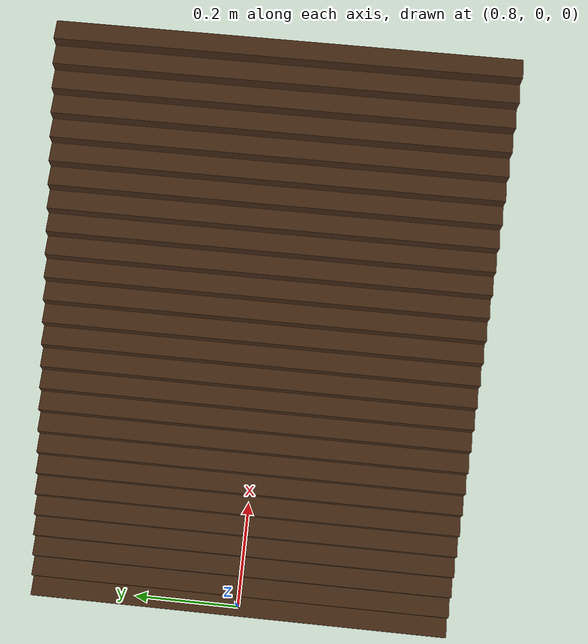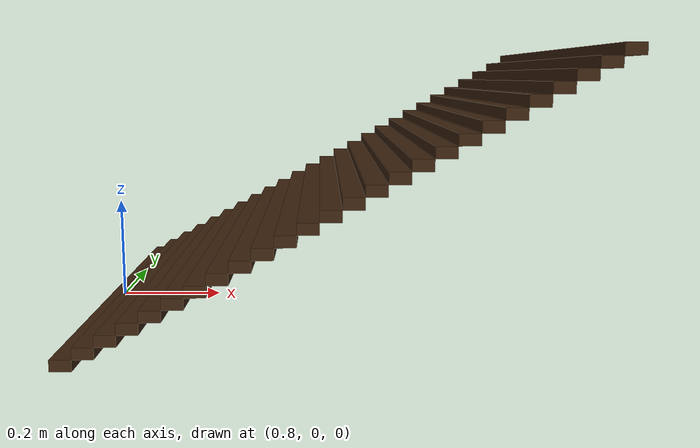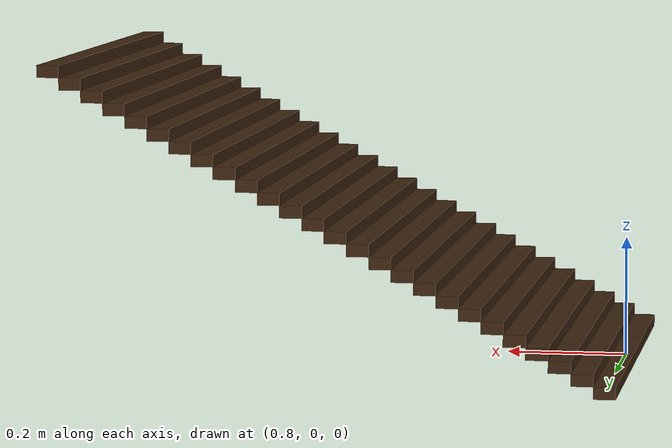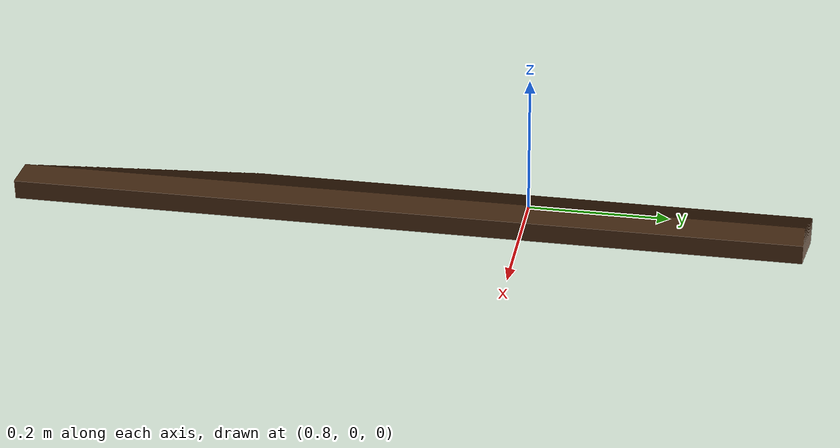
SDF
<?xml version="1.0" ?>
<sdf version="1.8">
    <model name="stairs">
        <static> true </static>
        <pose> 0.8 0 0 0 0 0</pose>
        <link name="block1">
            <pose>0 0 0 0 0 0 </pose>
            <collision name="collision">
                <geometry>
                    <box>
                        <size> 0.036 0.8 0.02 </size>
                    </box>
                </geometry>
            </collision>
            <visual name="visual">
                <geometry>
                    <box>
                        <size> 0.036 0.8 0.02 </size>
                    </box>
                </geometry>
                <material>
                    <ambient>0.4 0.2368 0.1036 1</ambient>
                    <diffuse>0.25 0.148 0.06475 1</diffuse>
                    <specular>1.0 1.0 1.0 1</specular>
                </material>
            </visual>
        </link>

        <link name="block2">
            <pose relative_to = "block1">0.036 0 0.02 0 0 0 </pose>
            <collision name="collision">
                <geometry>
                    <box>
                        <size> 0.036 0.8 0.02 </size>
                    </box>
                </geometry>
            </collision>
            <visual name="visual">
                <geometry>
                    <box>
                        <size> 0.036 0.8 0.02 </size>
                    </box>
                </geometry>
                <material>
                    <ambient>0.4 0.2368 0.1036 1</ambient>
                    <diffuse>0.25 0.148 0.06475 1</diffuse>
                    <specular>1.0 1.0 1.0 1</specular>
                </material>
            </visual>
        </link>

        <link name="block3">
            <pose relative_to = "block2">0.036 0 0.02 0 0 0 </pose>
            <collision name="collision">
                <geometry>
                    <box>
                        <size> 0.036 0.8 0.02 </size>
                    </box>
                </geometry>
            </collision>
            <visual name="visual">
                <geometry>
                    <box>
                        <size> 0.036 0.8 0.02 </size>
                    </box>
                </geometry>
                <material>
                    <ambient>0.4 0.2368 0.1036 1</ambient>
                    <diffuse>0.25 0.148 0.06475 1</diffuse>
                    <specular>1.0 1.0 1.0 1</specular>
                </material>
            </visual>
        </link>

        <link name="block4">
            <pose relative_to = "block3">0.036 0 0.02 0 0 0 </pose>
            <collision name="collision">
                <geometry>
                    <box>
                        <size> 0.036 0.8 0.02 </size>
                    </box>
                </geometry>
            </collision>
            <visual name="visual">
                <geometry>
                    <box>
                        <size> 0.036 0.8 0.02 </size>
                    </box>
                </geometry>
                <material>
                    <ambient>0.4 0.2368 0.1036 1</ambient>
                    <diffuse>0.25 0.148 0.06475 1</diffuse>
                    <specular>1.0 1.0 1.0 1</specular>
                </material>
            </visual>
        </link>

        <link name="block5">
            <pose relative_to = "block4">0.036 0 0.02 0 0 0 </pose>
            <collision name="collision">
                <geometry>
                    <box>
                        <size> 0.036 0.8 0.02 </size>
                    </box>
                </geometry>
            </collision>
            <visual name="visual">
                <geometry>
                    <box>
                        <size> 0.036 0.8 0.02 </size>
                    </box>
                </geometry>
                <material>
                    <ambient>0.4 0.2368 0.1036 1</ambient>
                    <diffuse>0.25 0.148 0.06475 1</diffuse>
                    <specular>1.0 1.0 1.0 1</specular>
                </material>
            </visual>
        </link>

        <link name="block6">
            <pose relative_to = "block5">0.036 0 0.02 0 0 0 </pose>
            <collision name="collision">
                <geometry>
                    <box>
                        <size> 0.036 0.8 0.02 </size>
                    </box>
                </geometry>
            </collision>
            <visual name="visual">
                <geometry>
                    <box>
                        <size> 0.036 0.8 0.02 </size>
                    </box>
                </geometry>
                <material>
                    <ambient>0.4 0.2368 0.1036 1</ambient>
                    <diffuse>0.25 0.148 0.06475 1</diffuse>
                    <specular>1.0 1.0 1.0 1</specular>
                </material>
            </visual>
        </link>

        <link name="block7">
            <pose relative_to = "block6">0.036 0 0.02 0 0 0 </pose>
            <collision name="collision">
                <geometry>
                    <box>
                        <size> 0.036 0.8 0.02 </size>
                    </box>
                </geometry>
            </collision>
            <visual name="visual">
                <geometry>
                    <box>
                        <size> 0.036 0.8 0.02 </size>
                    </box>
                </geometry>
                <material>
                    <ambient>0.4 0.2368 0.1036 1</ambient>
                    <diffuse>0.25 0.148 0.06475 1</diffuse>
                    <specular>1.0 1.0 1.0 1</specular>
                </material>
            </visual>
        </link>

        <link name="block8">
            <pose relative_to = "block7">0.036 0 0.02 0 0 0 </pose>
            <collision name="collision">
                <geometry>
                    <box>
                        <size> 0.036 0.8 0.02 </size>
                    </box>
                </geometry>
            </collision>
            <visual name="visual">
                <geometry>
                    <box>
                        <size> 0.036 0.8 0.02 </size>
                    </box>
                </geometry>
                <material>
                    <ambient>0.4 0.2368 0.1036 1</ambient>
                    <diffuse>0.25 0.148 0.06475 1</diffuse>
                    <specular>1.0 1.0 1.0 1</specular>
                </material>
            </visual>
        </link>

        <link name="block9">
            <pose relative_to = "block8">0.036 0 0.02 0 0 0 </pose>
            <collision name="collision">
                <geometry>
                    <box>
                        <size> 0.036 0.8 0.02 </size>
                    </box>
                </geometry>
            </collision>
            <visual name="visual">
                <geometry>
                    <box>
                        <size> 0.036 0.8 0.02 </size>
                    </box>
                </geometry>
                <material>
                    <ambient>0.4 0.2368 0.1036 1</ambient>
                    <diffuse>0.25 0.148 0.06475 1</diffuse>
                    <specular>1.0 1.0 1.0 1</specular>
                </material>
            </visual>
        </link>

        <link name="block10">
            <pose relative_to = "block9">0.036 0 0.02 0 0 0 </pose>
            <collision name="collision">
                <geometry>
                    <box>
                        <size> 0.036 0.8 0.02 </size>
                    </box>
                </geometry>
            </collision>
            <visual name="visual">
                <geometry>
                    <box>
                        <size> 0.036 0.8 0.02 </size>
                    </box>
                </geometry>
                <material>
                    <ambient>0.4 0.2368 0.1036 1</ambient>
                    <diffuse>0.25 0.148 0.06475 1</diffuse>
                    <specular>1.0 1.0 1.0 1</specular>
                </material>
            </visual>
        </link>

        <link name="block11">
            <pose relative_to = "block10">0.036 0 0.02 0 0 0 </pose>
            <collision name="collision">
                <geometry>
                    <box>
                        <size> 0.036 0.8 0.02 </size>
                    </box>
                </geometry>
            </collision>
            <visual name="visual">
                <geometry>
                    <box>
                        <size> 0.036 0.8 0.02 </size>
                    </box>
                </geometry>
                <material>
                    <ambient>0.4 0.2368 0.1036 1</ambient>
                    <diffuse>0.25 0.148 0.06475 1</diffuse>
                    <specular>1.0 1.0 1.0 1</specular>
                </material>
            </visual>
        </link>

        <link name="block12">
            <pose relative_to = "block11">0.036 0 0.02 0 0 0 </pose>
            <collision name="collision">
                <geometry>
                    <box>
                        <size> 0.036 0.8 0.02 </size>
                    </box>
                </geometry>
            </collision>
            <visual name="visual">
                <geometry>
                    <box>
                        <size> 0.036 0.8 0.02 </size>
                    </box>
                </geometry>
                <material>
                    <ambient>0.4 0.2368 0.1036 1</ambient>
                    <diffuse>0.25 0.148 0.06475 1</diffuse>
                    <specular>1.0 1.0 1.0 1</specular>
                </material>
            </visual>
        </link>

        <link name="block13">
            <pose relative_to = "block12">0.036 0 0.02 0 0 0 </pose>
            <collision name="collision">
                <geometry>
                    <box>
                        <size> 0.036 0.8 0.02 </size>
                    </box>
                </geometry>
            </collision>
            <visual name="visual">
                <geometry>
                    <box>
                        <size> 0.036 0.8 0.02 </size>
                    </box>
                </geometry>
                <material>
                    <ambient>0.4 0.2368 0.1036 1</ambient>
                    <diffuse>0.25 0.148 0.06475 1</diffuse>
                    <specular>1.0 1.0 1.0 1</specular>
                </material>
            </visual>
        </link>

        <link name="block14">
            <pose relative_to = "block13">0.036 0 0.02 0 0 0 </pose>
            <collision name="collision">
                <geometry>
                    <box>
                        <size> 0.036 0.8 0.02 </size>
                    </box>
                </geometry>
            </collision>
            <visual name="visual">
                <geometry>
                    <box>
                        <size> 0.036 0.8 0.02 </size>
                    </box>
                </geometry>
                <material>
                    <ambient>0.4 0.2368 0.1036 1</ambient>
                    <diffuse>0.25 0.148 0.06475 1</diffuse>
                    <specular>1.0 1.0 1.0 1</specular>
                </material>
            </visual>
        </link>

        <link name="block15">
            <pose relative_to = "block14">0.036 0 0.02 0 0 0 </pose>
            <collision name="collision">
                <geometry>
                    <box>
                        <size> 0.036 0.8 0.02 </size>
                    </box>
                </geometry>
            </collision>
            <visual name="visual">
                <geometry>
                    <box>
                        <size> 0.036 0.8 0.02 </size>
                    </box>
                </geometry>
                <material>
                    <ambient>0.4 0.2368 0.1036 1</ambient>
                    <diffuse>0.25 0.148 0.06475 1</diffuse>
                    <specular>1.0 1.0 1.0 1</specular>
                </material>
            </visual>
        </link>

        <link name="block16">
            <pose relative_to = "block15">0.036 0 0.02 0 0 0 </pose>
            <collision name="collision">
                <geometry>
                    <box>
                        <size> 0.036 0.8 0.02 </size>
                    </box>
                </geometry>
            </collision>
            <visual name="visual">
                <geometry>
                    <box>
                        <size> 0.036 0.8 0.02 </size>
                    </box>
                </geometry>
                <material>
                    <ambient>0.4 0.2368 0.1036 1</ambient>
                    <diffuse>0.25 0.148 0.06475 1</diffuse>
                    <specular>1.0 1.0 1.0 1</specular>
                </material>
            </visual>
        </link>

        <link name="block17">
            <pose relative_to = "block16">0.036 0 0.02 0 0 0 </pose>
            <collision name="collision">
                <geometry>
                    <box>
                        <size> 0.036 0.8 0.02 </size>
                    </box>
                </geometry>
            </collision>
            <visual name="visual">
                <geometry>
                    <box>
                        <size> 0.036 0.8 0.02 </size>
                    </box>
                </geometry>
                <material>
                    <ambient>0.4 0.2368 0.1036 1</ambient>
                    <diffuse>0.25 0.148 0.06475 1</diffuse>
                    <specular>1.0 1.0 1.0 1</specular>
                </material>
            </visual>
        </link>

        <link name="block18">
            <pose relative_to = "block17">0.036 0 0.02 0 0 0 </pose>
            <collision name="collision">
                <geometry>
                    <box>
                        <size> 0.036 0.8 0.02 </size>
                    </box>
                </geometry>
            </collision>
            <visual name="visual">
                <geometry>
                    <box>
                        <size> 0.036 0.8 0.02 </size>
                    </box>
                </geometry>
                <material>
                    <ambient>0.4 0.2368 0.1036 1</ambient>
                    <diffuse>0.25 0.148 0.06475 1</diffuse>
                    <specular>1.0 1.0 1.0 1</specular>
                </material>
            </visual>
        </link>

        <link name="block19">
            <pose relative_to = "block18">0.036 0 0.02 0 0 0 </pose>
            <collision name="collision">
                <geometry>
                    <box>
                        <size> 0.036 0.8 0.02 </size>
                    </box>
                </geometry>
            </collision>
            <visual name="visual">
                <geometry>
                    <box>
                        <size> 0.036 0.8 0.02 </size>
                    </box>
                </geometry>
                <material>
                    <ambient>0.4 0.2368 0.1036 1</ambient>
                    <diffuse>0.25 0.148 0.06475 1</diffuse>
                    <specular>1.0 1.0 1.0 1</specular>
                </material>
            </visual>
        </link>

        <link name="block20">
            <pose relative_to = "block19">0.036 0 0.02 0 0 0 </pose>
            <collision name="collision">
                <geometry>
                    <box>
                        <size> 0.036 0.8 0.02 </size>
                    </box>
                </geometry>
            </collision>
            <visual name="visual">
                <geometry>
                    <box>
                        <size> 0.036 0.8 0.02 </size>
                    </box>
                </geometry>
                <material>
                    <ambient>0.4 0.2368 0.1036 1</ambient>
                    <diffuse>0.25 0.148 0.06475 1</diffuse>
                    <specular>1.0 1.0 1.0 1</specular>
                </material>
            </visual>
        </link>

        <link name="block21">
            <pose relative_to = "block20">0.036 0 0.02 0 0 0 </pose>
            <collision name="collision">
                <geometry>
                    <box>
                        <size> 0.036 0.8 0.02 </size>
                    </box>
                </geometry>
            </collision>
            <visual name="visual">
                <geometry>
                    <box>
                        <size> 0.036 0.8 0.02 </size>
                    </box>
                </geometry>
                <material>
                    <ambient>0.4 0.2368 0.1036 1</ambient>
                    <diffuse>0.25 0.148 0.06475 1</diffuse>
                    <specular>1.0 1.0 1.0 1</specular>
                </material>
            </visual>
        </link>

        <link name="block22">
            <pose relative_to = "block21">0.036 0 0.02 0 0 0 </pose>
            <collision name="collision">
                <geometry>
                    <box>
                        <size> 0.036 0.8 0.02 </size>
                    </box>
                </geometry>
            </collision>
            <visual name="visual">
                <geometry>
                    <box>
                        <size> 0.036 0.8 0.02 </size>
                    </box>
                </geometry>
                <material>
                    <ambient>0.4 0.2368 0.1036 1</ambient>
                    <diffuse>0.25 0.148 0.06475 1</diffuse>
                    <specular>1.0 1.0 1.0 1</specular>
                </material>
            </visual>
        </link>

        <link name="block23">
            <pose relative_to = "block22">0.036 0 0.02 0 0 0 </pose>
            <collision name="collision">
                <geometry>
                    <box>
                        <size> 0.036 0.8 0.02 </size>
                    </box>
                </geometry>
            </collision>
            <visual name="visual">
                <geometry>
                    <box>
                        <size> 0.036 0.8 0.02 </size>
                    </box>
                </geometry>
                <material>
                    <ambient>0.4 0.2368 0.1036 1</ambient>
                    <diffuse>0.25 0.148 0.06475 1</diffuse>
                    <specular>1.0 1.0 1.0 1</specular>
                </material>
            </visual>
        </link>

        <link name="block24">
            <pose relative_to = "block23">0.036 0 0.02 0 0 0 </pose>
            <collision name="collision">
                <geometry>
                    <box>
                        <size> 0.036 0.8 0.02 </size>
                    </box>
                </geometry>
            </collision>
            <visual name="visual">
                <geometry>
                    <box>
                        <size> 0.036 0.8 0.02 </size>
                    </box>
                </geometry>
                <material>
                    <ambient>0.4 0.2368 0.1036 1</ambient>
                    <diffuse>0.25 0.148 0.06475 1</diffuse>
                    <specular>1.0 1.0 1.0 1</specular>
                </material>
            </visual>
        </link>

        <link name="block25">
            <pose relative_to = "block24">0.036 0 0.02 0 0 0 </pose>
            <collision name="collision">
                <geometry>
                    <box>
                        <size> 0.036 0.8 0.02 </size>
                    </box>
                </geometry>
            </collision>
            <visual name="visual">
                <geometry>
                    <box>
                        <size> 0.036 0.8 0.02 </size>
                    </box>
                </geometry>
                <material>
                    <ambient>0.4 0.2368 0.1036 1</ambient>
                    <diffuse>0.25 0.148 0.06475 1</diffuse>
                    <specular>1.0 1.0 1.0 1</specular>
                </material>
            </visual>
        </link>

        <link name="block26">
            <pose relative_to = "block25">0.036 0 0.02 0 0 0 </pose>
            <collision name="collision">
                <geometry>
                    <box>
                        <size> 0.036 0.8 0.02 </size>
                    </box>
                </geometry>
            </collision>
            <visual name="visual">
                <geometry>
                    <box>
                        <size> 0.036 0.8 0.02 </size>
                    </box>
                </geometry>
                <material>
                    <ambient>0.4 0.2368 0.1036 1</ambient>
                    <diffuse>0.25 0.148 0.06475 1</diffuse>
                    <specular>1.0 1.0 1.0 1</specular>
                </material>
            </visual>
        </link>
    </model>

</sdf>
